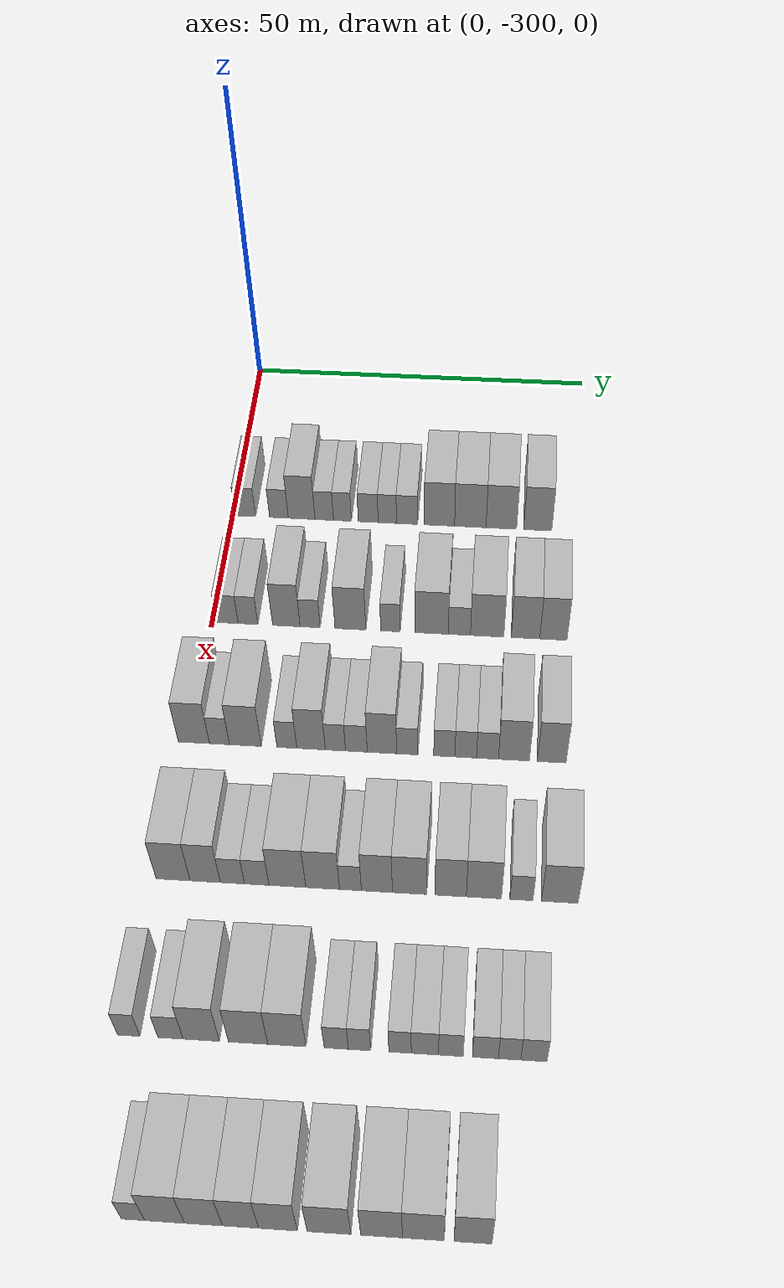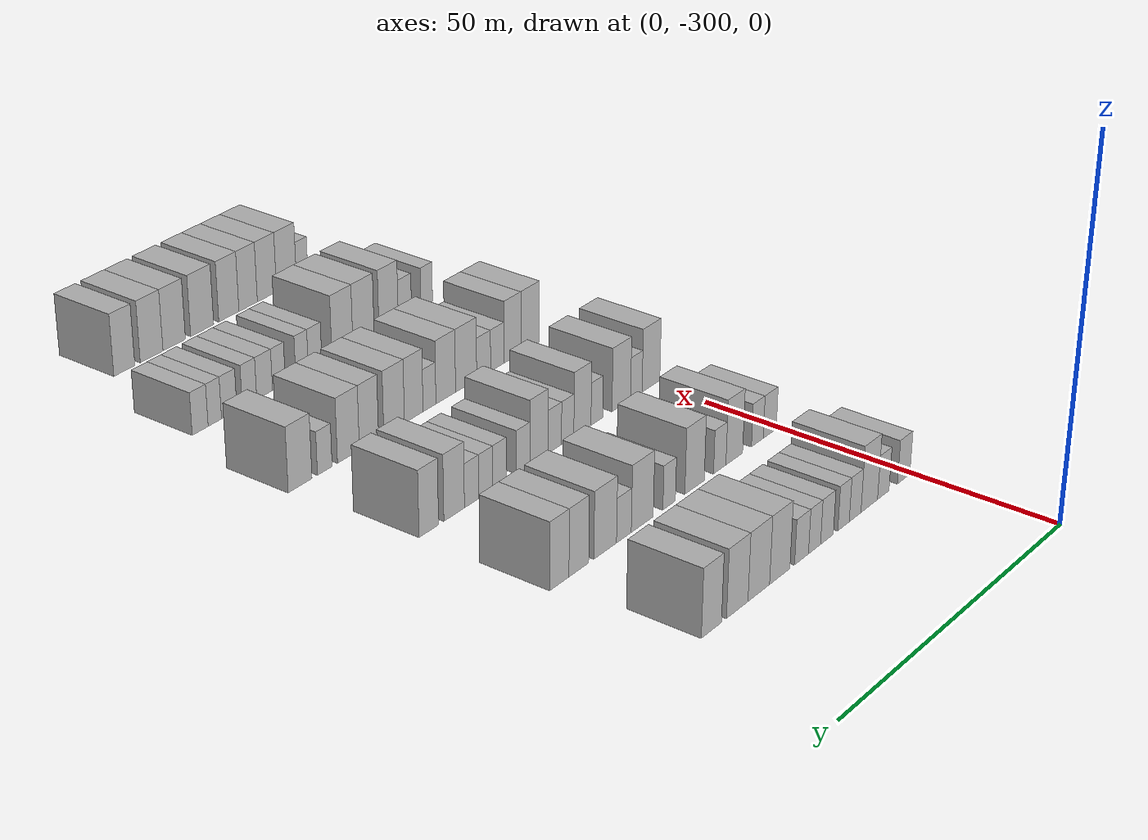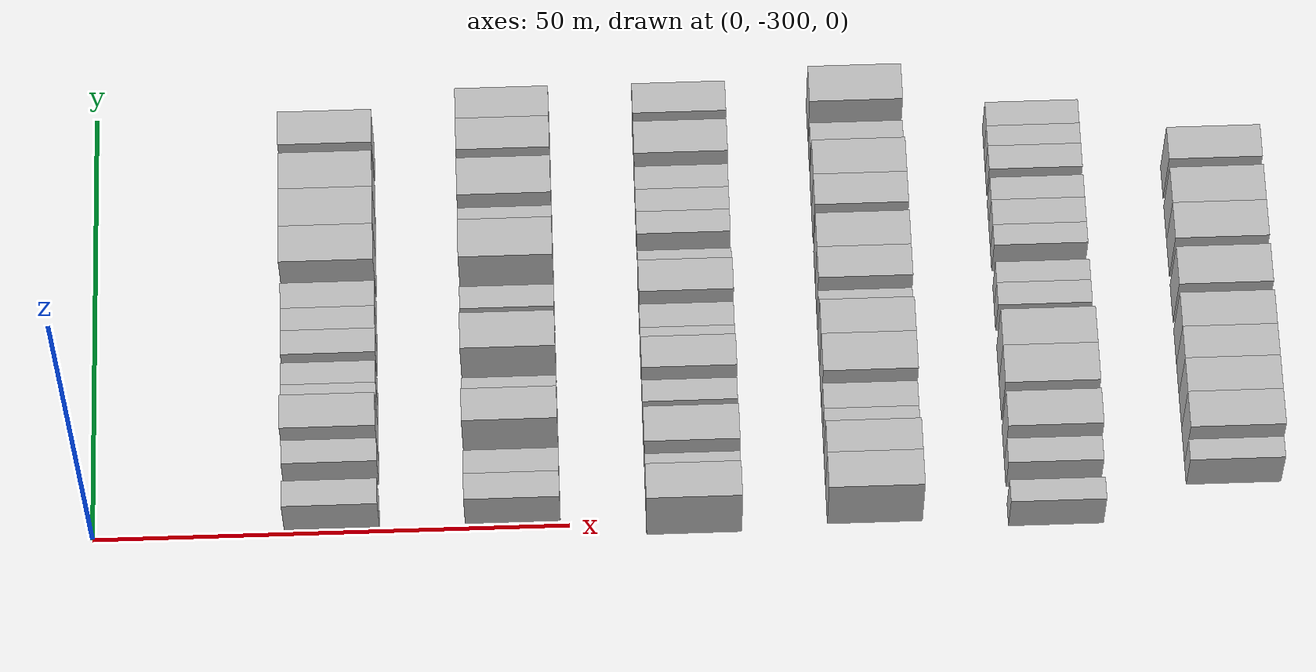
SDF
<sdf version="1.6">
 <world name="default">
  <model name="building_14">
   <static>1</static>
   <pose>25.0000 -298.1075 0 0.000000 0.000000 0.000000</pose>
   <link name="link">
    <pose>0 0 3.00 0 0 0</pose>
    <collision name="collision"><geometry><box><size>10.0000 2.9415 6.0000</size></box></geometry></collision>
    <visual name="visual">
     <cast_shadows>0</cast_shadows>
     <geometry><box><size>10.0000 2.9415 6.0000</size></box></geometry>
     <material>
      <script>
       <uri>model://HANNAS_wall/materials/scripts</uri>
       <uri>model://HANNAS_wall/materials/textures</uri>
       <name>vrc/HANNAS_wall</name>
      </script>
     </material>
    </visual>
   </link>
  </model>
  <model name="building_15">
   <static>1</static>
   <pose>25.0000 -293.2994 0 0.000000 0.000000 0.000000</pose>
   <link name="link">
    <pose>0 0 3.00 0 0 0</pose>
    <collision name="collision"><geometry><box><size>10.0000 2.6746 6.0000</size></box></geometry></collision>
    <visual name="visual">
     <cast_shadows>0</cast_shadows>
     <geometry><box><size>10.0000 2.6746 6.0000</size></box></geometry>
     <material>
      <script>
       <uri>model://HANNAS_wall/materials/scripts</uri>
       <uri>model://HANNAS_wall/materials/textures</uri>
       <name>vrc/HANNAS_wall</name>
      </script>
     </material>
    </visual>
   </link>
  </model>
  <model name="building_16">
   <static>1</static>
   <pose>25.0000 -290.0480 0 0.000000 0.000000 0.000000</pose>
   <link name="link">
    <pose>0 0 4.50 0 0 0</pose>
    <collision name="collision"><geometry><box><size>10.0000 3.8283 9.0000</size></box></geometry></collision>
    <visual name="visual">
     <cast_shadows>0</cast_shadows>
     <geometry><box><size>10.0000 3.8283 9.0000</size></box></geometry>
     <material>
      <script>
       <uri>model://HANNAS_wall/materials/scripts</uri>
       <uri>model://HANNAS_wall/materials/textures</uri>
       <name>vrc/HANNAS_wall</name>
      </script>
     </material>
    </visual>
   </link>
  </model>
  <model name="building_17">
   <static>1</static>
   <pose>25.0000 -286.8046 0 0.000000 0.000000 0.000000</pose>
   <link name="link">
    <pose>0 0 3.00 0 0 0</pose>
    <collision name="collision"><geometry><box><size>10.0000 2.6584 6.0000</size></box></geometry></collision>
    <visual name="visual">
     <cast_shadows>0</cast_shadows>
     <geometry><box><size>10.0000 2.6584 6.0000</size></box></geometry>
     <material>
      <script>
       <uri>model://HANNAS_wall/materials/scripts</uri>
       <uri>model://HANNAS_wall/materials/textures</uri>
       <name>vrc/HANNAS_wall</name>
      </script>
     </material>
    </visual>
   </link>
  </model>
  <model name="building_18">
   <static>1</static>
   <pose>25.0000 -284.1970 0 0.000000 0.000000 0.000000</pose>
   <link name="link">
    <pose>0 0 3.00 0 0 0</pose>
    <collision name="collision"><geometry><box><size>10.0000 2.5568 6.0000</size></box></geometry></collision>
    <visual name="visual">
     <cast_shadows>0</cast_shadows>
     <geometry><box><size>10.0000 2.5568 6.0000</size></box></geometry>
     <material>
      <script>
       <uri>model://HANNAS_wall/materials/scripts</uri>
       <uri>model://HANNAS_wall/materials/textures</uri>
       <name>vrc/HANNAS_wall</name>
      </script>
     </material>
    </visual>
   </link>
  </model>
  <model name="building_19">
   <static>1</static>
   <pose>25.0000 -280.5066 0 0.000000 0.000000 0.000000</pose>
   <link name="link">
    <pose>0 0 3.00 0 0 0</pose>
    <collision name="collision"><geometry><box><size>10.0000 2.8239 6.0000</size></box></geometry></collision>
    <visual name="visual">
     <cast_shadows>0</cast_shadows>
     <geometry><box><size>10.0000 2.8239 6.0000</size></box></geometry>
     <material>
      <script>
       <uri>model://HANNAS_wall/materials/scripts</uri>
       <uri>model://HANNAS_wall/materials/textures</uri>
       <name>vrc/HANNAS_wall</name>
      </script>
     </material>
    </visual>
   </link>
  </model>
  <model name="building_20">
   <static>1</static>
   <pose>25.0000 -277.7799 0 0.000000 0.000000 0.000000</pose>
   <link name="link">
    <pose>0 0 3.00 0 0 0</pose>
    <collision name="collision"><geometry><box><size>10.0000 2.6295 6.0000</size></box></geometry></collision>
    <visual name="visual">
     <cast_shadows>0</cast_shadows>
     <geometry><box><size>10.0000 2.6295 6.0000</size></box></geometry>
     <material>
      <script>
       <uri>model://HANNAS_wall/materials/scripts</uri>
       <uri>model://HANNAS_wall/materials/textures</uri>
       <name>vrc/HANNAS_wall</name>
      </script>
     </material>
    </visual>
   </link>
  </model>
  <model name="building_21">
   <static>1</static>
   <pose>25.0000 -274.9703 0 0.000000 0.000000 0.000000</pose>
   <link name="link">
    <pose>0 0 3.00 0 0 0</pose>
    <collision name="collision"><geometry><box><size>10.0000 2.9897 6.0000</size></box></geometry></collision>
    <visual name="visual">
     <cast_shadows>0</cast_shadows>
     <geometry><box><size>10.0000 2.9897 6.0000</size></box></geometry>
     <material>
      <script>
       <uri>model://HANNAS_wall/materials/scripts</uri>
       <uri>model://HANNAS_wall/materials/textures</uri>
       <name>vrc/HANNAS_wall</name>
      </script>
     </material>
    </visual>
   </link>
  </model>
  <model name="building_22">
   <static>1</static>
   <pose>25.0000 -270.3398 0 0.000000 0.000000 0.000000</pose>
   <link name="link">
    <pose>0 0 4.50 0 0 0</pose>
    <collision name="collision"><geometry><box><size>10.0000 4.2713 9.0000</size></box></geometry></collision>
    <visual name="visual">
     <cast_shadows>0</cast_shadows>
     <geometry><box><size>10.0000 4.2713 9.0000</size></box></geometry>
     <material>
      <script>
       <uri>model://HANNAS_wall/materials/scripts</uri>
       <uri>model://HANNAS_wall/materials/textures</uri>
       <name>vrc/HANNAS_wall</name>
      </script>
     </material>
    </visual>
   </link>
  </model>
  <model name="building_23">
   <static>1</static>
   <pose>25.0000 -265.9745 0 0.000000 0.000000 0.000000</pose>
   <link name="link">
    <pose>0 0 4.50 0 0 0</pose>
    <collision name="collision"><geometry><box><size>10.0000 4.4593 9.0000</size></box></geometry></collision>
    <visual name="visual">
     <cast_shadows>0</cast_shadows>
     <geometry><box><size>10.0000 4.4593 9.0000</size></box></geometry>
     <material>
      <script>
       <uri>model://HANNAS_wall/materials/scripts</uri>
       <uri>model://HANNAS_wall/materials/textures</uri>
       <name>vrc/HANNAS_wall</name>
      </script>
     </material>
    </visual>
   </link>
  </model>
  <model name="building_24">
   <static>1</static>
   <pose>25.0000 -261.5767 0 0.000000 0.000000 0.000000</pose>
   <link name="link">
    <pose>0 0 4.50 0 0 0</pose>
    <collision name="collision"><geometry><box><size>10.0000 4.3362 9.0000</size></box></geometry></collision>
    <visual name="visual">
     <cast_shadows>0</cast_shadows>
     <geometry><box><size>10.0000 4.3362 9.0000</size></box></geometry>
     <material>
      <script>
       <uri>model://HANNAS_wall/materials/scripts</uri>
       <uri>model://HANNAS_wall/materials/textures</uri>
       <name>vrc/HANNAS_wall</name>
      </script>
     </material>
    </visual>
   </link>
  </model>
  <model name="building_25">
   <static>1</static>
   <pose>25.0000 -256.4209 0 0.000000 0.000000 0.000000</pose>
   <link name="link">
    <pose>0 0 4.50 0 0 0</pose>
    <collision name="collision"><geometry><box><size>10.0000 3.9754 9.0000</size></box></geometry></collision>
    <visual name="visual">
     <cast_shadows>0</cast_shadows>
     <geometry><box><size>10.0000 3.9754 9.0000</size></box></geometry>
     <material>
      <script>
       <uri>model://HANNAS_wall/materials/scripts</uri>
       <uri>model://HANNAS_wall/materials/textures</uri>
       <name>vrc/HANNAS_wall</name>
      </script>
     </material>
    </visual>
   </link>
  </model>
  <model name="building_176">
   <static>1</static>
   <pose>44.0000 -297.9158 0 0.000000 0.000000 0.000000</pose>
   <link name="link">
    <pose>0 0 3.00 0 0 0</pose>
    <collision name="collision"><geometry><box><size>10.0000 2.9864 6.0000</size></box></geometry></collision>
    <visual name="visual">
     <cast_shadows>0</cast_shadows>
     <geometry><box><size>10.0000 2.9864 6.0000</size></box></geometry>
     <material>
      <script>
       <uri>model://HANNAS_wall/materials/scripts</uri>
       <uri>model://HANNAS_wall/materials/textures</uri>
       <name>vrc/HANNAS_wall</name>
      </script>
     </material>
    </visual>
   </link>
  </model>
  <model name="building_177">
   <static>1</static>
   <pose>44.0000 -295.0849 0 0.000000 0.000000 0.000000</pose>
   <link name="link">
    <pose>0 0 3.00 0 0 0</pose>
    <collision name="collision"><geometry><box><size>10.0000 2.6753 6.0000</size></box></geometry></collision>
    <visual name="visual">
     <cast_shadows>0</cast_shadows>
     <geometry><box><size>10.0000 2.6753 6.0000</size></box></geometry>
     <material>
      <script>
       <uri>model://HANNAS_wall/materials/scripts</uri>
       <uri>model://HANNAS_wall/materials/textures</uri>
       <name>vrc/HANNAS_wall</name>
      </script>
     </material>
    </visual>
   </link>
  </model>
  <model name="building_178">
   <static>1</static>
   <pose>44.0000 -289.8901 0 0.000000 0.000000 0.000000</pose>
   <link name="link">
    <pose>0 0 4.50 0 0 0</pose>
    <collision name="collision"><geometry><box><size>10.0000 3.7142 9.0000</size></box></geometry></collision>
    <visual name="visual">
     <cast_shadows>0</cast_shadows>
     <geometry><box><size>10.0000 3.7142 9.0000</size></box></geometry>
     <material>
      <script>
       <uri>model://HANNAS_wall/materials/scripts</uri>
       <uri>model://HANNAS_wall/materials/textures</uri>
       <name>vrc/HANNAS_wall</name>
      </script>
     </material>
    </visual>
   </link>
  </model>
  <model name="building_179">
   <static>1</static>
   <pose>44.0000 -286.6765 0 0.000000 0.000000 0.000000</pose>
   <link name="link">
    <pose>0 0 3.00 0 0 0</pose>
    <collision name="collision"><geometry><box><size>10.0000 2.7130 6.0000</size></box></geometry></collision>
    <visual name="visual">
     <cast_shadows>0</cast_shadows>
     <geometry><box><size>10.0000 2.7130 6.0000</size></box></geometry>
     <material>
      <script>
       <uri>model://HANNAS_wall/materials/scripts</uri>
       <uri>model://HANNAS_wall/materials/textures</uri>
       <name>vrc/HANNAS_wall</name>
      </script>
     </material>
    </visual>
   </link>
  </model>
  <model name="building_180">
   <static>1</static>
   <pose>44.0000 -281.2388 0 0.000000 0.000000 0.000000</pose>
   <link name="link">
    <pose>0 0 4.50 0 0 0</pose>
    <collision name="collision"><geometry><box><size>10.0000 4.1625 9.0000</size></box></geometry></collision>
    <visual name="visual">
     <cast_shadows>0</cast_shadows>
     <geometry><box><size>10.0000 4.1625 9.0000</size></box></geometry>
     <material>
      <script>
       <uri>model://HANNAS_wall/materials/scripts</uri>
       <uri>model://HANNAS_wall/materials/textures</uri>
       <name>vrc/HANNAS_wall</name>
      </script>
     </material>
    </visual>
   </link>
  </model>
  <model name="building_181">
   <static>1</static>
   <pose>44.0000 -275.8540 0 0.000000 0.000000 0.000000</pose>
   <link name="link">
    <pose>0 0 3.00 0 0 0</pose>
    <collision name="collision"><geometry><box><size>10.0000 2.6069 6.0000</size></box></geometry></collision>
    <visual name="visual">
     <cast_shadows>0</cast_shadows>
     <geometry><box><size>10.0000 2.6069 6.0000</size></box></geometry>
     <material>
      <script>
       <uri>model://HANNAS_wall/materials/scripts</uri>
       <uri>model://HANNAS_wall/materials/textures</uri>
       <name>vrc/HANNAS_wall</name>
      </script>
     </material>
    </visual>
   </link>
  </model>
  <model name="building_182">
   <static>1</static>
   <pose>44.0000 -270.3104 0 0.000000 0.000000 0.000000</pose>
   <link name="link">
    <pose>0 0 4.50 0 0 0</pose>
    <collision name="collision"><geometry><box><size>10.0000 4.4804 9.0000</size></box></geometry></collision>
    <visual name="visual">
     <cast_shadows>0</cast_shadows>
     <geometry><box><size>10.0000 4.4804 9.0000</size></box></geometry>
     <material>
      <script>
       <uri>model://HANNAS_wall/materials/scripts</uri>
       <uri>model://HANNAS_wall/materials/textures</uri>
       <name>vrc/HANNAS_wall</name>
      </script>
     </material>
    </visual>
   </link>
  </model>
  <model name="building_183">
   <static>1</static>
   <pose>44.0000 -266.5931 0 0.000000 0.000000 0.000000</pose>
   <link name="link">
    <pose>0 0 3.00 0 0 0</pose>
    <collision name="collision"><geometry><box><size>10.0000 2.9541 6.0000</size></box></geometry></collision>
    <visual name="visual">
     <cast_shadows>0</cast_shadows>
     <geometry><box><size>10.0000 2.9541 6.0000</size></box></geometry>
     <material>
      <script>
       <uri>model://HANNAS_wall/materials/scripts</uri>
       <uri>model://HANNAS_wall/materials/textures</uri>
       <name>vrc/HANNAS_wall</name>
      </script>
     </material>
    </visual>
   </link>
  </model>
  <model name="building_184">
   <static>1</static>
   <pose>44.0000 -262.8851 0 0.000000 0.000000 0.000000</pose>
   <link name="link">
    <pose>0 0 4.50 0 0 0</pose>
    <collision name="collision"><geometry><box><size>10.0000 4.4619 9.0000</size></box></geometry></collision>
    <visual name="visual">
     <cast_shadows>0</cast_shadows>
     <geometry><box><size>10.0000 4.4619 9.0000</size></box></geometry>
     <material>
      <script>
       <uri>model://HANNAS_wall/materials/scripts</uri>
       <uri>model://HANNAS_wall/materials/textures</uri>
       <name>vrc/HANNAS_wall</name>
      </script>
     </material>
    </visual>
   </link>
  </model>
  <model name="building_185">
   <static>1</static>
   <pose>44.0000 -257.7532 0 0.000000 0.000000 0.000000</pose>
   <link name="link">
    <pose>0 0 4.50 0 0 0</pose>
    <collision name="collision"><geometry><box><size>10.0000 3.8017 9.0000</size></box></geometry></collision>
    <visual name="visual">
     <cast_shadows>0</cast_shadows>
     <geometry><box><size>10.0000 3.8017 9.0000</size></box></geometry>
     <material>
      <script>
       <uri>model://HANNAS_wall/materials/scripts</uri>
       <uri>model://HANNAS_wall/materials/textures</uri>
       <name>vrc/HANNAS_wall</name>
      </script>
     </material>
    </visual>
   </link>
  </model>
  <model name="building_186">
   <static>1</static>
   <pose>44.0000 -254.0371 0 0.000000 0.000000 0.000000</pose>
   <link name="link">
    <pose>0 0 4.50 0 0 0</pose>
    <collision name="collision"><geometry><box><size>10.0000 3.6306 9.0000</size></box></geometry></collision>
    <visual name="visual">
     <cast_shadows>0</cast_shadows>
     <geometry><box><size>10.0000 3.6306 9.0000</size></box></geometry>
     <material>
      <script>
       <uri>model://HANNAS_wall/materials/scripts</uri>
       <uri>model://HANNAS_wall/materials/textures</uri>
       <name>vrc/HANNAS_wall</name>
      </script>
     </material>
    </visual>
   </link>
  </model>
  <model name="building_361">
   <static>1</static>
   <pose>63.0000 -299.3426 0 0.000000 0.000000 0.000000</pose>
   <link name="link">
    <pose>0 0 4.50 0 0 0</pose>
    <collision name="collision"><geometry><box><size>10.0000 3.9771 9.0000</size></box></geometry></collision>
    <visual name="visual">
     <cast_shadows>0</cast_shadows>
     <geometry><box><size>10.0000 3.9771 9.0000</size></box></geometry>
     <material>
      <script>
       <uri>model://HANNAS_wall/materials/scripts</uri>
       <uri>model://HANNAS_wall/materials/textures</uri>
       <name>vrc/HANNAS_wall</name>
      </script>
     </material>
    </visual>
   </link>
  </model>
  <model name="building_362">
   <static>1</static>
   <pose>63.0000 -296.0745 0 0.000000 0.000000 0.000000</pose>
   <link name="link">
    <pose>0 0 3.00 0 0 0</pose>
    <collision name="collision"><geometry><box><size>10.0000 2.5591 6.0000</size></box></geometry></collision>
    <visual name="visual">
     <cast_shadows>0</cast_shadows>
     <geometry><box><size>10.0000 2.5591 6.0000</size></box></geometry>
     <material>
      <script>
       <uri>model://HANNAS_wall/materials/scripts</uri>
       <uri>model://HANNAS_wall/materials/textures</uri>
       <name>vrc/HANNAS_wall</name>
      </script>
     </material>
    </visual>
   </link>
  </model>
  <model name="building_363">
   <static>1</static>
   <pose>63.0000 -292.7713 0 0.000000 0.000000 0.000000</pose>
   <link name="link">
    <pose>0 0 4.50 0 0 0</pose>
    <collision name="collision"><geometry><box><size>10.0000 4.0472 9.0000</size></box></geometry></collision>
    <visual name="visual">
     <cast_shadows>0</cast_shadows>
     <geometry><box><size>10.0000 4.0472 9.0000</size></box></geometry>
     <material>
      <script>
       <uri>model://HANNAS_wall/materials/scripts</uri>
       <uri>model://HANNAS_wall/materials/textures</uri>
       <name>vrc/HANNAS_wall</name>
      </script>
     </material>
    </visual>
   </link>
  </model>
  <model name="building_364">
   <static>1</static>
   <pose>63.0000 -287.4903 0 0.000000 0.000000 0.000000</pose>
   <link name="link">
    <pose>0 0 3.00 0 0 0</pose>
    <collision name="collision"><geometry><box><size>10.0000 2.5149 6.0000</size></box></geometry></collision>
    <visual name="visual">
     <cast_shadows>0</cast_shadows>
     <geometry><box><size>10.0000 2.5149 6.0000</size></box></geometry>
     <material>
      <script>
       <uri>model://HANNAS_wall/materials/scripts</uri>
       <uri>model://HANNAS_wall/materials/textures</uri>
       <name>vrc/HANNAS_wall</name>
      </script>
     </material>
    </visual>
   </link>
  </model>
  <model name="building_365">
   <static>1</static>
   <pose>63.0000 -284.4243 0 0.000000 0.000000 0.000000</pose>
   <link name="link">
    <pose>0 0 4.50 0 0 0</pose>
    <collision name="collision"><geometry><box><size>10.0000 3.6171 9.0000</size></box></geometry></collision>
    <visual name="visual">
     <cast_shadows>0</cast_shadows>
     <geometry><box><size>10.0000 3.6171 9.0000</size></box></geometry>
     <material>
      <script>
       <uri>model://HANNAS_wall/materials/scripts</uri>
       <uri>model://HANNAS_wall/materials/textures</uri>
       <name>vrc/HANNAS_wall</name>
      </script>
     </material>
    </visual>
   </link>
  </model>
  <model name="building_366">
   <static>1</static>
   <pose>63.0000 -281.3320 0 0.000000 0.000000 0.000000</pose>
   <link name="link">
    <pose>0 0 3.00 0 0 0</pose>
    <collision name="collision"><geometry><box><size>10.0000 2.5676 6.0000</size></box></geometry></collision>
    <visual name="visual">
     <cast_shadows>0</cast_shadows>
     <geometry><box><size>10.0000 2.5676 6.0000</size></box></geometry>
     <material>
      <script>
       <uri>model://HANNAS_wall/materials/scripts</uri>
       <uri>model://HANNAS_wall/materials/textures</uri>
       <name>vrc/HANNAS_wall</name>
      </script>
     </material>
    </visual>
   </link>
  </model>
  <model name="building_367">
   <static>1</static>
   <pose>63.0000 -278.6711 0 0.000000 0.000000 0.000000</pose>
   <link name="link">
    <pose>0 0 3.00 0 0 0</pose>
    <collision name="collision"><geometry><box><size>10.0000 2.7541 6.0000</size></box></geometry></collision>
    <visual name="visual">
     <cast_shadows>0</cast_shadows>
     <geometry><box><size>10.0000 2.7541 6.0000</size></box></geometry>
     <material>
      <script>
       <uri>model://HANNAS_wall/materials/scripts</uri>
       <uri>model://HANNAS_wall/materials/textures</uri>
       <name>vrc/HANNAS_wall</name>
      </script>
     </material>
    </visual>
   </link>
  </model>
  <model name="building_368">
   <static>1</static>
   <pose>63.0000 -275.4357 0 0.000000 0.000000 0.000000</pose>
   <link name="link">
    <pose>0 0 4.50 0 0 0</pose>
    <collision name="collision"><geometry><box><size>10.0000 3.7166 9.0000</size></box></geometry></collision>
    <visual name="visual">
     <cast_shadows>0</cast_shadows>
     <geometry><box><size>10.0000 3.7166 9.0000</size></box></geometry>
     <material>
      <script>
       <uri>model://HANNAS_wall/materials/scripts</uri>
       <uri>model://HANNAS_wall/materials/textures</uri>
       <name>vrc/HANNAS_wall</name>
      </script>
     </material>
    </visual>
   </link>
  </model>
  <model name="building_369">
   <static>1</static>
   <pose>63.0000 -272.2389 0 0.000000 0.000000 0.000000</pose>
   <link name="link">
    <pose>0 0 3.00 0 0 0</pose>
    <collision name="collision"><geometry><box><size>10.0000 2.6771 6.0000</size></box></geometry></collision>
    <visual name="visual">
     <cast_shadows>0</cast_shadows>
     <geometry><box><size>10.0000 2.6771 6.0000</size></box></geometry>
     <material>
      <script>
       <uri>model://HANNAS_wall/materials/scripts</uri>
       <uri>model://HANNAS_wall/materials/textures</uri>
       <name>vrc/HANNAS_wall</name>
      </script>
     </material>
    </visual>
   </link>
  </model>
  <model name="building_370">
   <static>1</static>
   <pose>63.0000 -267.5620 0 0.000000 0.000000 0.000000</pose>
   <link name="link">
    <pose>0 0 3.00 0 0 0</pose>
    <collision name="collision"><geometry><box><size>10.0000 2.6766 6.0000</size></box></geometry></collision>
    <visual name="visual">
     <cast_shadows>0</cast_shadows>
     <geometry><box><size>10.0000 2.6766 6.0000</size></box></geometry>
     <material>
      <script>
       <uri>model://HANNAS_wall/materials/scripts</uri>
       <uri>model://HANNAS_wall/materials/textures</uri>
       <name>vrc/HANNAS_wall</name>
      </script>
     </material>
    </visual>
   </link>
  </model>
  <model name="building_371">
   <static>1</static>
   <pose>63.0000 -264.8729 0 0.000000 0.000000 0.000000</pose>
   <link name="link">
    <pose>0 0 3.00 0 0 0</pose>
    <collision name="collision"><geometry><box><size>10.0000 2.7017 6.0000</size></box></geometry></collision>
    <visual name="visual">
     <cast_shadows>0</cast_shadows>
     <geometry><box><size>10.0000 2.7017 6.0000</size></box></geometry>
     <material>
      <script>
       <uri>model://HANNAS_wall/materials/scripts</uri>
       <uri>model://HANNAS_wall/materials/textures</uri>
       <name>vrc/HANNAS_wall</name>
      </script>
     </material>
    </visual>
   </link>
  </model>
  <model name="building_372">
   <static>1</static>
   <pose>63.0000 -262.1426 0 0.000000 0.000000 0.000000</pose>
   <link name="link">
    <pose>0 0 3.00 0 0 0</pose>
    <collision name="collision"><geometry><box><size>10.0000 2.7590 6.0000</size></box></geometry></collision>
    <visual name="visual">
     <cast_shadows>0</cast_shadows>
     <geometry><box><size>10.0000 2.7590 6.0000</size></box></geometry>
     <material>
      <script>
       <uri>model://HANNAS_wall/materials/scripts</uri>
       <uri>model://HANNAS_wall/materials/textures</uri>
       <name>vrc/HANNAS_wall</name>
      </script>
     </material>
    </visual>
   </link>
  </model>
  <model name="building_373">
   <static>1</static>
   <pose>63.0000 -258.8222 0 0.000000 0.000000 0.000000</pose>
   <link name="link">
    <pose>0 0 4.50 0 0 0</pose>
    <collision name="collision"><geometry><box><size>10.0000 3.8816 9.0000</size></box></geometry></collision>
    <visual name="visual">
     <cast_shadows>0</cast_shadows>
     <geometry><box><size>10.0000 3.8816 9.0000</size></box></geometry>
     <material>
      <script>
       <uri>model://HANNAS_wall/materials/scripts</uri>
       <uri>model://HANNAS_wall/materials/textures</uri>
       <name>vrc/HANNAS_wall</name>
      </script>
     </material>
    </visual>
   </link>
  </model>
  <model name="building_374">
   <static>1</static>
   <pose>63.0000 -254.0802 0 0.000000 0.000000 0.000000</pose>
   <link name="link">
    <pose>0 0 4.50 0 0 0</pose>
    <collision name="collision"><geometry><box><size>10.0000 3.6023 9.0000</size></box></geometry></collision>
    <visual name="visual">
     <cast_shadows>0</cast_shadows>
     <geometry><box><size>10.0000 3.6023 9.0000</size></box></geometry>
     <material>
      <script>
       <uri>model://HANNAS_wall/materials/scripts</uri>
       <uri>model://HANNAS_wall/materials/textures</uri>
       <name>vrc/HANNAS_wall</name>
      </script>
     </material>
    </visual>
   </link>
  </model>
  <model name="building_532">
   <static>1</static>
   <pose>82.0000 -298.7184 0 0.000000 0.000000 0.000000</pose>
   <link name="link">
    <pose>0 0 4.50 0 0 0</pose>
    <collision name="collision"><geometry><box><size>10.0000 4.0582 9.0000</size></box></geometry></collision>
    <visual name="visual">
     <cast_shadows>0</cast_shadows>
     <geometry><box><size>10.0000 4.0582 9.0000</size></box></geometry>
     <material>
      <script>
       <uri>model://HANNAS_wall/materials/scripts</uri>
       <uri>model://HANNAS_wall/materials/textures</uri>
       <name>vrc/HANNAS_wall</name>
      </script>
     </material>
    </visual>
   </link>
  </model>
  <model name="building_533">
   <static>1</static>
   <pose>82.0000 -294.8841 0 0.000000 0.000000 0.000000</pose>
   <link name="link">
    <pose>0 0 4.50 0 0 0</pose>
    <collision name="collision"><geometry><box><size>10.0000 3.6104 9.0000</size></box></geometry></collision>
    <visual name="visual">
     <cast_shadows>0</cast_shadows>
     <geometry><box><size>10.0000 3.6104 9.0000</size></box></geometry>
     <material>
      <script>
       <uri>model://HANNAS_wall/materials/scripts</uri>
       <uri>model://HANNAS_wall/materials/textures</uri>
       <name>vrc/HANNAS_wall</name>
      </script>
     </material>
    </visual>
   </link>
  </model>
  <model name="building_534">
   <static>1</static>
   <pose>82.0000 -291.6403 0 0.000000 0.000000 0.000000</pose>
   <link name="link">
    <pose>0 0 3.00 0 0 0</pose>
    <collision name="collision"><geometry><box><size>10.0000 2.8773 6.0000</size></box></geometry></collision>
    <visual name="visual">
     <cast_shadows>0</cast_shadows>
     <geometry><box><size>10.0000 2.8773 6.0000</size></box></geometry>
     <material>
      <script>
       <uri>model://HANNAS_wall/materials/scripts</uri>
       <uri>model://HANNAS_wall/materials/textures</uri>
       <name>vrc/HANNAS_wall</name>
      </script>
     </material>
    </visual>
   </link>
  </model>
  <model name="building_535">
   <static>1</static>
   <pose>82.0000 -288.7385 0 0.000000 0.000000 0.000000</pose>
   <link name="link">
    <pose>0 0 3.00 0 0 0</pose>
    <collision name="collision"><geometry><box><size>10.0000 2.9263 6.0000</size></box></geometry></collision>
    <visual name="visual">
     <cast_shadows>0</cast_shadows>
     <geometry><box><size>10.0000 2.9263 6.0000</size></box></geometry>
     <material>
      <script>
       <uri>model://HANNAS_wall/materials/scripts</uri>
       <uri>model://HANNAS_wall/materials/textures</uri>
       <name>vrc/HANNAS_wall</name>
      </script>
     </material>
    </visual>
   </link>
  </model>
  <model name="building_536">
   <static>1</static>
   <pose>82.0000 -285.0881 0 0.000000 0.000000 0.000000</pose>
   <link name="link">
    <pose>0 0 4.50 0 0 0</pose>
    <collision name="collision"><geometry><box><size>10.0000 4.3745 9.0000</size></box></geometry></collision>
    <visual name="visual">
     <cast_shadows>0</cast_shadows>
     <geometry><box><size>10.0000 4.3745 9.0000</size></box></geometry>
     <material>
      <script>
       <uri>model://HANNAS_wall/materials/scripts</uri>
       <uri>model://HANNAS_wall/materials/textures</uri>
       <name>vrc/HANNAS_wall</name>
      </script>
     </material>
    </visual>
   </link>
  </model>
  <model name="building_537">
   <static>1</static>
   <pose>82.0000 -280.9010 0 0.000000 0.000000 0.000000</pose>
   <link name="link">
    <pose>0 0 4.50 0 0 0</pose>
    <collision name="collision"><geometry><box><size>10.0000 3.9998 9.0000</size></box></geometry></collision>
    <visual name="visual">
     <cast_shadows>0</cast_shadows>
     <geometry><box><size>10.0000 3.9998 9.0000</size></box></geometry>
     <material>
      <script>
       <uri>model://HANNAS_wall/materials/scripts</uri>
       <uri>model://HANNAS_wall/materials/textures</uri>
       <name>vrc/HANNAS_wall</name>
      </script>
     </material>
    </visual>
   </link>
  </model>
  <model name="building_538">
   <static>1</static>
   <pose>82.0000 -277.6067 0 0.000000 0.000000 0.000000</pose>
   <link name="link">
    <pose>0 0 3.00 0 0 0</pose>
    <collision name="collision"><geometry><box><size>10.0000 2.5888 6.0000</size></box></geometry></collision>
    <visual name="visual">
     <cast_shadows>0</cast_shadows>
     <geometry><box><size>10.0000 2.5888 6.0000</size></box></geometry>
     <material>
      <script>
       <uri>model://HANNAS_wall/materials/scripts</uri>
       <uri>model://HANNAS_wall/materials/textures</uri>
       <name>vrc/HANNAS_wall</name>
      </script>
     </material>
    </visual>
   </link>
  </model>
  <model name="building_539">
   <static>1</static>
   <pose>82.0000 -274.4768 0 0.000000 0.000000 0.000000</pose>
   <link name="link">
    <pose>0 0 4.50 0 0 0</pose>
    <collision name="collision"><geometry><box><size>10.0000 3.6710 9.0000</size></box></geometry></collision>
    <visual name="visual">
     <cast_shadows>0</cast_shadows>
     <geometry><box><size>10.0000 3.6710 9.0000</size></box></geometry>
     <material>
      <script>
       <uri>model://HANNAS_wall/materials/scripts</uri>
       <uri>model://HANNAS_wall/materials/textures</uri>
       <name>vrc/HANNAS_wall</name>
      </script>
     </material>
    </visual>
   </link>
  </model>
  <model name="building_540">
   <static>1</static>
   <pose>82.0000 -270.6206 0 0.000000 0.000000 0.000000</pose>
   <link name="link">
    <pose>0 0 4.50 0 0 0</pose>
    <collision name="collision"><geometry><box><size>10.0000 4.0413 9.0000</size></box></geometry></collision>
    <visual name="visual">
     <cast_shadows>0</cast_shadows>
     <geometry><box><size>10.0000 4.0413 9.0000</size></box></geometry>
     <material>
      <script>
       <uri>model://HANNAS_wall/materials/scripts</uri>
       <uri>model://HANNAS_wall/materials/textures</uri>
       <name>vrc/HANNAS_wall</name>
      </script>
     </material>
    </visual>
   </link>
  </model>
  <model name="building_541">
   <static>1</static>
   <pose>82.0000 -265.7652 0 0.000000 0.000000 0.000000</pose>
   <link name="link">
    <pose>0 0 4.50 0 0 0</pose>
    <collision name="collision"><geometry><box><size>10.0000 3.6695 9.0000</size></box></geometry></collision>
    <visual name="visual">
     <cast_shadows>0</cast_shadows>
     <geometry><box><size>10.0000 3.6695 9.0000</size></box></geometry>
     <material>
      <script>
       <uri>model://HANNAS_wall/materials/scripts</uri>
       <uri>model://HANNAS_wall/materials/textures</uri>
       <name>vrc/HANNAS_wall</name>
      </script>
     </material>
    </visual>
   </link>
  </model>
  <model name="building_542">
   <static>1</static>
   <pose>82.0000 -261.8691 0 0.000000 0.000000 0.000000</pose>
   <link name="link">
    <pose>0 0 4.50 0 0 0</pose>
    <collision name="collision"><geometry><box><size>10.0000 4.1229 9.0000</size></box></geometry></collision>
    <visual name="visual">
     <cast_shadows>0</cast_shadows>
     <geometry><box><size>10.0000 4.1229 9.0000</size></box></geometry>
     <material>
      <script>
       <uri>model://HANNAS_wall/materials/scripts</uri>
       <uri>model://HANNAS_wall/materials/textures</uri>
       <name>vrc/HANNAS_wall</name>
      </script>
     </material>
    </visual>
   </link>
  </model>
  <model name="building_543">
   <static>1</static>
   <pose>82.0000 -257.4586 0 0.000000 0.000000 0.000000</pose>
   <link name="link">
    <pose>0 0 3.00 0 0 0</pose>
    <collision name="collision"><geometry><box><size>10.0000 2.6981 6.0000</size></box></geometry></collision>
    <visual name="visual">
     <cast_shadows>0</cast_shadows>
     <geometry><box><size>10.0000 2.6981 6.0000</size></box></geometry>
     <material>
      <script>
       <uri>model://HANNAS_wall/materials/scripts</uri>
       <uri>model://HANNAS_wall/materials/textures</uri>
       <name>vrc/HANNAS_wall</name>
      </script>
     </material>
    </visual>
   </link>
  </model>
  <model name="building_544">
   <static>1</static>
   <pose>82.0000 -252.9627 0 0.000000 0.000000 0.000000</pose>
   <link name="link">
    <pose>0 0 4.50 0 0 0</pose>
    <collision name="collision"><geometry><box><size>10.0000 4.2937 9.0000</size></box></geometry></collision>
    <visual name="visual">
     <cast_shadows>0</cast_shadows>
     <geometry><box><size>10.0000 4.2937 9.0000</size></box></geometry>
     <material>
      <script>
       <uri>model://HANNAS_wall/materials/scripts</uri>
       <uri>model://HANNAS_wall/materials/textures</uri>
       <name>vrc/HANNAS_wall</name>
      </script>
     </material>
    </visual>
   </link>
  </model>
  <model name="building_683">
   <static>1</static>
   <pose>101.0000 -300.3972 0 0.000000 0.000000 0.000000</pose>
   <link name="link">
    <pose>0 0 3.00 0 0 0</pose>
    <collision name="collision"><geometry><box><size>10.0000 2.5149 6.0000</size></box></geometry></collision>
    <visual name="visual">
     <cast_shadows>0</cast_shadows>
     <geometry><box><size>10.0000 2.5149 6.0000</size></box></geometry>
     <material>
      <script>
       <uri>model://HANNAS_wall/materials/scripts</uri>
       <uri>model://HANNAS_wall/materials/textures</uri>
       <name>vrc/HANNAS_wall</name>
      </script>
     </material>
    </visual>
   </link>
  </model>
  <model name="building_684">
   <static>1</static>
   <pose>101.0000 -295.7359 0 0.000000 0.000000 0.000000</pose>
   <link name="link">
    <pose>0 0 3.00 0 0 0</pose>
    <collision name="collision"><geometry><box><size>10.0000 2.8077 6.0000</size></box></geometry></collision>
    <visual name="visual">
     <cast_shadows>0</cast_shadows>
     <geometry><box><size>10.0000 2.8077 6.0000</size></box></geometry>
     <material>
      <script>
       <uri>model://HANNAS_wall/materials/scripts</uri>
       <uri>model://HANNAS_wall/materials/textures</uri>
       <name>vrc/HANNAS_wall</name>
      </script>
     </material>
    </visual>
   </link>
  </model>
  <model name="building_685">
   <static>1</static>
   <pose>101.0000 -292.3102 0 0.000000 0.000000 0.000000</pose>
   <link name="link">
    <pose>0 0 4.50 0 0 0</pose>
    <collision name="collision"><geometry><box><size>10.0000 4.0437 9.0000</size></box></geometry></collision>
    <visual name="visual">
     <cast_shadows>0</cast_shadows>
     <geometry><box><size>10.0000 4.0437 9.0000</size></box></geometry>
     <material>
      <script>
       <uri>model://HANNAS_wall/materials/scripts</uri>
       <uri>model://HANNAS_wall/materials/textures</uri>
       <name>vrc/HANNAS_wall</name>
      </script>
     </material>
    </visual>
   </link>
  </model>
  <model name="building_686">
   <static>1</static>
   <pose>101.0000 -287.1065 0 0.000000 0.000000 0.000000</pose>
   <link name="link">
    <pose>0 0 4.50 0 0 0</pose>
    <collision name="collision"><geometry><box><size>10.0000 4.3636 9.0000</size></box></geometry></collision>
    <visual name="visual">
     <cast_shadows>0</cast_shadows>
     <geometry><box><size>10.0000 4.3636 9.0000</size></box></geometry>
     <material>
      <script>
       <uri>model://HANNAS_wall/materials/scripts</uri>
       <uri>model://HANNAS_wall/materials/textures</uri>
       <name>vrc/HANNAS_wall</name>
      </script>
     </material>
    </visual>
   </link>
  </model>
  <model name="building_687">
   <static>1</static>
   <pose>101.0000 -282.8084 0 0.000000 0.000000 0.000000</pose>
   <link name="link">
    <pose>0 0 4.50 0 0 0</pose>
    <collision name="collision"><geometry><box><size>10.0000 4.2325 9.0000</size></box></geometry></collision>
    <visual name="visual">
     <cast_shadows>0</cast_shadows>
     <geometry><box><size>10.0000 4.2325 9.0000</size></box></geometry>
     <material>
      <script>
       <uri>model://HANNAS_wall/materials/scripts</uri>
       <uri>model://HANNAS_wall/materials/textures</uri>
       <name>vrc/HANNAS_wall</name>
      </script>
     </material>
    </visual>
   </link>
  </model>
  <model name="building_688">
   <static>1</static>
   <pose>101.0000 -277.3582 0 0.000000 0.000000 0.000000</pose>
   <link name="link">
    <pose>0 0 3.00 0 0 0</pose>
    <collision name="collision"><geometry><box><size>10.0000 2.6681 6.0000</size></box></geometry></collision>
    <visual name="visual">
     <cast_shadows>0</cast_shadows>
     <geometry><box><size>10.0000 2.6681 6.0000</size></box></geometry>
     <material>
      <script>
       <uri>model://HANNAS_wall/materials/scripts</uri>
       <uri>model://HANNAS_wall/materials/textures</uri>
       <name>vrc/HANNAS_wall</name>
      </script>
     </material>
    </visual>
   </link>
  </model>
  <model name="building_689">
   <static>1</static>
   <pose>101.0000 -274.7934 0 0.000000 0.000000 0.000000</pose>
   <link name="link">
    <pose>0 0 3.00 0 0 0</pose>
    <collision name="collision"><geometry><box><size>10.0000 2.4613 6.0000</size></box></geometry></collision>
    <visual name="visual">
     <cast_shadows>0</cast_shadows>
     <geometry><box><size>10.0000 2.4613 6.0000</size></box></geometry>
     <material>
      <script>
       <uri>model://HANNAS_wall/materials/scripts</uri>
       <uri>model://HANNAS_wall/materials/textures</uri>
       <name>vrc/HANNAS_wall</name>
      </script>
     </material>
    </visual>
   </link>
  </model>
  <model name="building_690">
   <static>1</static>
   <pose>101.0000 -270.3288 0 0.000000 0.000000 0.000000</pose>
   <link name="link">
    <pose>0 0 3.00 0 0 0</pose>
    <collision name="collision"><geometry><box><size>10.0000 2.4680 6.0000</size></box></geometry></collision>
    <visual name="visual">
     <cast_shadows>0</cast_shadows>
     <geometry><box><size>10.0000 2.4680 6.0000</size></box></geometry>
     <material>
      <script>
       <uri>model://HANNAS_wall/materials/scripts</uri>
       <uri>model://HANNAS_wall/materials/textures</uri>
       <name>vrc/HANNAS_wall</name>
      </script>
     </material>
    </visual>
   </link>
  </model>
  <model name="building_691">
   <static>1</static>
   <pose>101.0000 -267.5986 0 0.000000 0.000000 0.000000</pose>
   <link name="link">
    <pose>0 0 3.00 0 0 0</pose>
    <collision name="collision"><geometry><box><size>10.0000 2.9925 6.0000</size></box></geometry></collision>
    <visual name="visual">
     <cast_shadows>0</cast_shadows>
     <geometry><box><size>10.0000 2.9925 6.0000</size></box></geometry>
     <material>
      <script>
       <uri>model://HANNAS_wall/materials/scripts</uri>
       <uri>model://HANNAS_wall/materials/textures</uri>
       <name>vrc/HANNAS_wall</name>
      </script>
     </material>
    </visual>
   </link>
  </model>
  <model name="building_692">
   <static>1</static>
   <pose>101.0000 -264.7500 0 0.000000 0.000000 0.000000</pose>
   <link name="link">
    <pose>0 0 3.00 0 0 0</pose>
    <collision name="collision"><geometry><box><size>10.0000 2.7045 6.0000</size></box></geometry></collision>
    <visual name="visual">
     <cast_shadows>0</cast_shadows>
     <geometry><box><size>10.0000 2.7045 6.0000</size></box></geometry>
     <material>
      <script>
       <uri>model://HANNAS_wall/materials/scripts</uri>
       <uri>model://HANNAS_wall/materials/textures</uri>
       <name>vrc/HANNAS_wall</name>
      </script>
     </material>
    </visual>
   </link>
  </model>
  <model name="building_693">
   <static>1</static>
   <pose>101.0000 -260.9813 0 0.000000 0.000000 0.000000</pose>
   <link name="link">
    <pose>0 0 3.00 0 0 0</pose>
    <collision name="collision"><geometry><box><size>10.0000 2.8330 6.0000</size></box></geometry></collision>
    <visual name="visual">
     <cast_shadows>0</cast_shadows>
     <geometry><box><size>10.0000 2.8330 6.0000</size></box></geometry>
     <material>
      <script>
       <uri>model://HANNAS_wall/materials/scripts</uri>
       <uri>model://HANNAS_wall/materials/textures</uri>
       <name>vrc/HANNAS_wall</name>
      </script>
     </material>
    </visual>
   </link>
  </model>
  <model name="building_694">
   <static>1</static>
   <pose>101.0000 -258.3396 0 0.000000 0.000000 0.000000</pose>
   <link name="link">
    <pose>0 0 3.00 0 0 0</pose>
    <collision name="collision"><geometry><box><size>10.0000 2.4503 6.0000</size></box></geometry></collision>
    <visual name="visual">
     <cast_shadows>0</cast_shadows>
     <geometry><box><size>10.0000 2.4503 6.0000</size></box></geometry>
     <material>
      <script>
       <uri>model://HANNAS_wall/materials/scripts</uri>
       <uri>model://HANNAS_wall/materials/textures</uri>
       <name>vrc/HANNAS_wall</name>
      </script>
     </material>
    </visual>
   </link>
  </model>
  <model name="building_695">
   <static>1</static>
   <pose>101.0000 -255.6768 0 0.000000 0.000000 0.000000</pose>
   <link name="link">
    <pose>0 0 3.00 0 0 0</pose>
    <collision name="collision"><geometry><box><size>10.0000 2.8754 6.0000</size></box></geometry></collision>
    <visual name="visual">
     <cast_shadows>0</cast_shadows>
     <geometry><box><size>10.0000 2.8754 6.0000</size></box></geometry>
     <material>
      <script>
       <uri>model://HANNAS_wall/materials/scripts</uri>
       <uri>model://HANNAS_wall/materials/textures</uri>
       <name>vrc/HANNAS_wall</name>
      </script>
     </material>
    </visual>
   </link>
  </model>
  <model name="building_857">
   <static>1</static>
   <pose>120.0000 -296.3071 0 0.000000 0.000000 0.000000</pose>
   <link name="link">
    <pose>0 0 3.00 0 0 0</pose>
    <collision name="collision"><geometry><box><size>10.0000 2.4007 6.0000</size></box></geometry></collision>
    <visual name="visual">
     <cast_shadows>0</cast_shadows>
     <geometry><box><size>10.0000 2.4007 6.0000</size></box></geometry>
     <material>
      <script>
       <uri>model://HANNAS_wall/materials/scripts</uri>
       <uri>model://HANNAS_wall/materials/textures</uri>
       <name>vrc/HANNAS_wall</name>
      </script>
     </material>
    </visual>
   </link>
  </model>
  <model name="building_858">
   <static>1</static>
   <pose>120.0000 -293.0487 0 0.000000 0.000000 0.000000</pose>
   <link name="link">
    <pose>0 0 4.50 0 0 0</pose>
    <collision name="collision"><geometry><box><size>10.0000 4.1160 9.0000</size></box></geometry></collision>
    <visual name="visual">
     <cast_shadows>0</cast_shadows>
     <geometry><box><size>10.0000 4.1160 9.0000</size></box></geometry>
     <material>
      <script>
       <uri>model://HANNAS_wall/materials/scripts</uri>
       <uri>model://HANNAS_wall/materials/textures</uri>
       <name>vrc/HANNAS_wall</name>
      </script>
     </material>
    </visual>
   </link>
  </model>
  <model name="building_859">
   <static>1</static>
   <pose>120.0000 -289.0334 0 0.000000 0.000000 0.000000</pose>
   <link name="link">
    <pose>0 0 4.50 0 0 0</pose>
    <collision name="collision"><geometry><box><size>10.0000 3.9146 9.0000</size></box></geometry></collision>
    <visual name="visual">
     <cast_shadows>0</cast_shadows>
     <geometry><box><size>10.0000 3.9146 9.0000</size></box></geometry>
     <material>
      <script>
       <uri>model://HANNAS_wall/materials/scripts</uri>
       <uri>model://HANNAS_wall/materials/textures</uri>
       <name>vrc/HANNAS_wall</name>
      </script>
     </material>
    </visual>
   </link>
  </model>
  <model name="building_860">
   <static>1</static>
   <pose>120.0000 -285.2282 0 0.000000 0.000000 0.000000</pose>
   <link name="link">
    <pose>0 0 4.50 0 0 0</pose>
    <collision name="collision"><geometry><box><size>10.0000 3.6959 9.0000</size></box></geometry></collision>
    <visual name="visual">
     <cast_shadows>0</cast_shadows>
     <geometry><box><size>10.0000 3.6959 9.0000</size></box></geometry>
     <material>
      <script>
       <uri>model://HANNAS_wall/materials/scripts</uri>
       <uri>model://HANNAS_wall/materials/textures</uri>
       <name>vrc/HANNAS_wall</name>
      </script>
     </material>
    </visual>
   </link>
  </model>
  <model name="building_861">
   <static>1</static>
   <pose>120.0000 -281.3891 0 0.000000 0.000000 0.000000</pose>
   <link name="link">
    <pose>0 0 4.50 0 0 0</pose>
    <collision name="collision"><geometry><box><size>10.0000 3.9823 9.0000</size></box></geometry></collision>
    <visual name="visual">
     <cast_shadows>0</cast_shadows>
     <geometry><box><size>10.0000 3.9823 9.0000</size></box></geometry>
     <material>
      <script>
       <uri>model://HANNAS_wall/materials/scripts</uri>
       <uri>model://HANNAS_wall/materials/textures</uri>
       <name>vrc/HANNAS_wall</name>
      </script>
     </material>
    </visual>
   </link>
  </model>
  <model name="building_862">
   <static>1</static>
   <pose>120.0000 -276.1651 0 0.000000 0.000000 0.000000</pose>
   <link name="link">
    <pose>0 0 4.50 0 0 0</pose>
    <collision name="collision"><geometry><box><size>10.0000 4.4656 9.0000</size></box></geometry></collision>
    <visual name="visual">
     <cast_shadows>0</cast_shadows>
     <geometry><box><size>10.0000 4.4656 9.0000</size></box></geometry>
     <material>
      <script>
       <uri>model://HANNAS_wall/materials/scripts</uri>
       <uri>model://HANNAS_wall/materials/textures</uri>
       <name>vrc/HANNAS_wall</name>
      </script>
     </material>
    </visual>
   </link>
  </model>
  <model name="building_863">
   <static>1</static>
   <pose>120.0000 -270.8037 0 0.000000 0.000000 0.000000</pose>
   <link name="link">
    <pose>0 0 4.50 0 0 0</pose>
    <collision name="collision"><geometry><box><size>10.0000 4.2573 9.0000</size></box></geometry></collision>
    <visual name="visual">
     <cast_shadows>0</cast_shadows>
     <geometry><box><size>10.0000 4.2573 9.0000</size></box></geometry>
     <material>
      <script>
       <uri>model://HANNAS_wall/materials/scripts</uri>
       <uri>model://HANNAS_wall/materials/textures</uri>
       <name>vrc/HANNAS_wall</name>
      </script>
     </material>
    </visual>
   </link>
  </model>
  <model name="building_864">
   <static>1</static>
   <pose>120.0000 -266.5531 0 0.000000 0.000000 0.000000</pose>
   <link name="link">
    <pose>0 0 4.50 0 0 0</pose>
    <collision name="collision"><geometry><box><size>10.0000 4.2438 9.0000</size></box></geometry></collision>
    <visual name="visual">
     <cast_shadows>0</cast_shadows>
     <geometry><box><size>10.0000 4.2438 9.0000</size></box></geometry>
     <material>
      <script>
       <uri>model://HANNAS_wall/materials/scripts</uri>
       <uri>model://HANNAS_wall/materials/textures</uri>
       <name>vrc/HANNAS_wall</name>
      </script>
     </material>
    </visual>
   </link>
  </model>
  <model name="building_865">
   <static>1</static>
   <pose>120.0000 -261.5111 0 0.000000 0.000000 0.000000</pose>
   <link name="link">
    <pose>0 0 4.50 0 0 0</pose>
    <collision name="collision"><geometry><box><size>10.0000 3.8401 9.0000</size></box></geometry></collision>
    <visual name="visual">
     <cast_shadows>0</cast_shadows>
     <geometry><box><size>10.0000 3.8401 9.0000</size></box></geometry>
     <material>
      <script>
       <uri>model://HANNAS_wall/materials/scripts</uri>
       <uri>model://HANNAS_wall/materials/textures</uri>
       <name>vrc/HANNAS_wall</name>
      </script>
     </material>
    </visual>
   </link>
  </model>
 </world>
</sdf>
